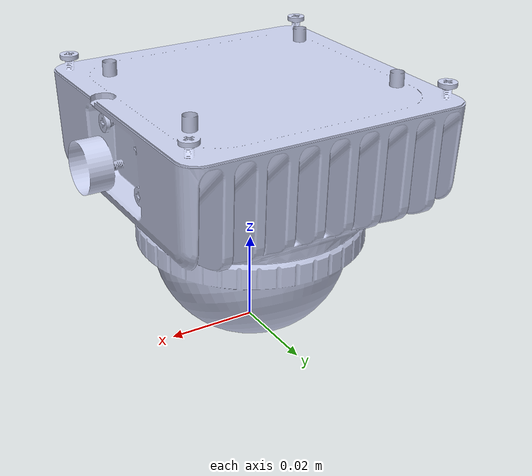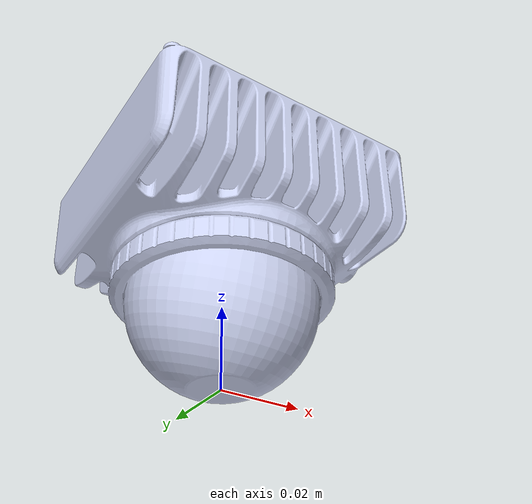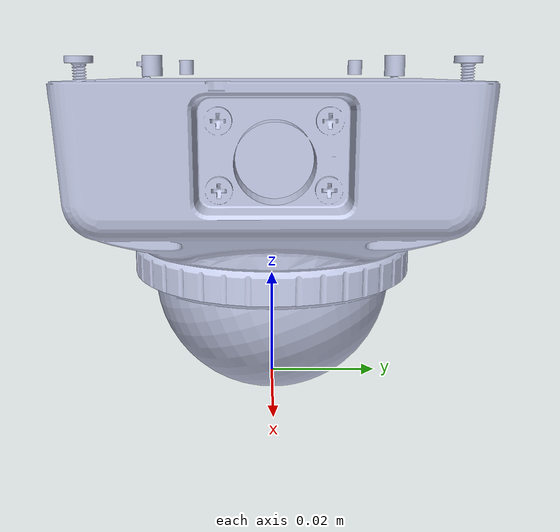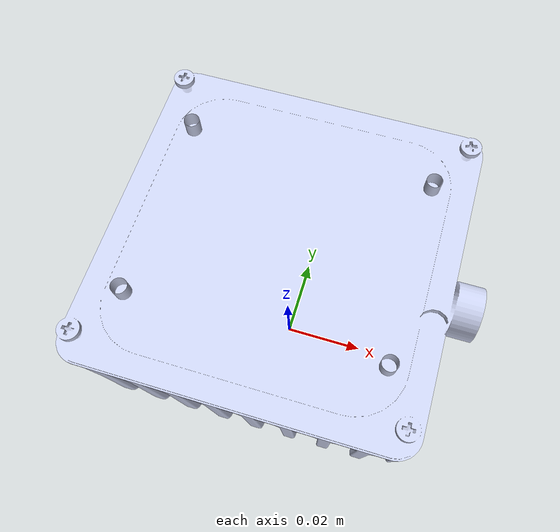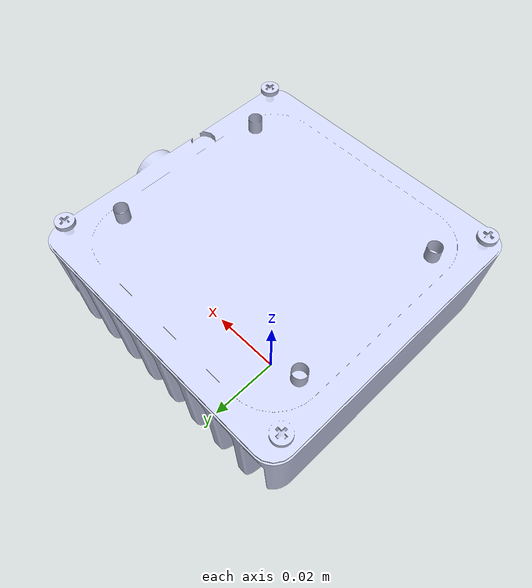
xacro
<?xml version="1.0" encoding="utf-8"?>
<robot name="sentry_laser" xmlns:xacro="http://www.ros.org/wiki/xacro">
<link
    name="Laser_Link">
    <inertial>
      <origin
        xyz="-0.000243768363515523 1.68373030667576E-06 0.0354698758043828"
        rpy="0 0 0" />
      <mass
        value="0.124623929963422" />
      <inertia
        ixx="3.64034890751659E-05"
        ixy="-6.50149904285924E-09"
        ixz="3.15422790274066E-07"
        iyy="3.96287690028152E-05"
        iyz="-2.91455786600563E-09"
        izz="5.80811525687162E-05" />
    </inertial>
    <visual>
      <origin
        xyz="0 0 0"
        rpy="0 0 0" />
      <geometry>
        <mesh
          filename="package://sentry_kinematics_sim/meshes/Laser_Link.STL" />
      </geometry>
      <material
        name="">
        <color
          rgba="0.792156862745098 0.819607843137255 0.933333333333333 1" />
      </material>
    </visual>
    <collision>
      <origin
        xyz="0 0 0"
        rpy="0 0 0" />
      <geometry>
        <mesh
          filename="package://sentry_kinematics_sim/meshes/Laser_Link.STL" />
      </geometry>
    </collision>
  </link>

     <gazebo reference="Laser_Link">
     <material>Gazebo/Red</material>
     <turnGravityOff>false</turnGravityOff>
 </gazebo>

</robot>
